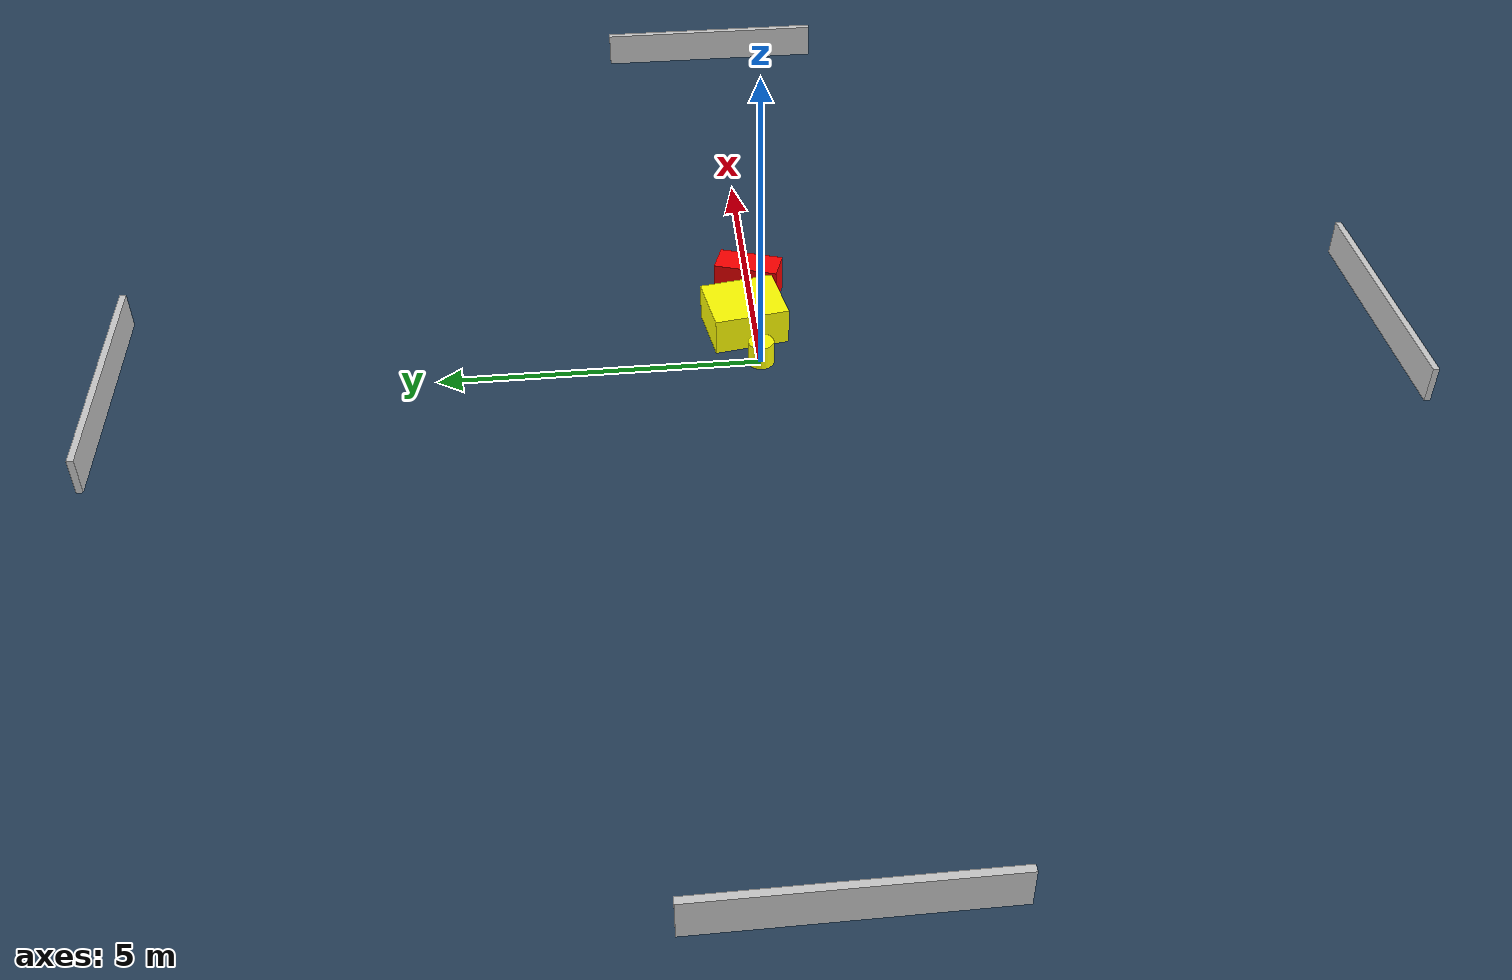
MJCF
<?xml version="1.0" ?>
<mujoco model="generated_environment">
  <option timestep="0.01" integrator="RK4" cone="elliptic"/>
  <default>
    <geom density="1"/>
  </default>
  <asset>
    <texture builtin="gradient" height="3072" name="skybox" rgb1="0.3 0.5 0.7" rgb2="0 0 0" type="skybox" width="512"/>
    <texture builtin="checker" height="300" name="groundplane" rgb1="0.2 0.3 0.4" rgb2="0.1 0.2 0.3" type="2d" width="300"/>
    <material name="groundplane" reflectance="0.2" texrepeat="5 5" texture="groundplane"/>
  </asset>
  <worldbody>
    <light dir="0 0 -1" directional="true" pos="0 0 1.5"/>
    <geom condim="3" friction="0.5 0.005 0.001" material="groundplane" name="floor" pos="0 0 0" size="0 0 0.05" type="plane"/>
    <body name="walls">
      <geom name="wall_1" condim="4" pos="-10.0 0.0 0.3" rgba="0.800000011920929 0.800000011920929 0.800000011920929 1.0" size="0.05 2.0 0.3" type="box"/>
      <geom name="wall_2" condim="4" pos="10.0 0.0 0.3" rgba="0.800000011920929 0.800000011920929 0.800000011920929 1.0" size="0.05 2.0 0.3" type="box"/>
      <geom name="wall_3" condim="4" pos="0.0 -10.0 0.3" rgba="0.800000011920929 0.800000011920929 0.800000011920929 1.0" size="2.0 0.05 0.3" type="box"/>
      <geom name="wall_4" condim="4" pos="0.0 10.0 0.3" rgba="0.800000011920929 0.800000011920929 0.800000011920929 1.0" size="2.0 0.05 0.3" type="box"/>
    </body>
    <body name="robot">
      <joint name="joint_x" type="slide" pos="0 0 0" axis="1 0 0"/>
      <joint name="joint_y" type="slide" pos="0 0 0" axis="0 1 0"/>
      <geom name="robot" type="cylinder" pos="0.0 0.0 0.2" size="0.2 0.2 0.0" mass="5.0" friction="1.0 0.005 0.0001" condim="4" rgba="1.0 1.0 0.0 1.0"/>
    </body>
    <body name="obstacle_1_movable">
      <geom name="obstacle_1_movable" condim="4" pos="0.8802121988843049 0.17870379525240088 0.3" euler="0 0 279.33013927595" friction="0.0 0.005 0.001" rgba="1.0 1.0 0.0 1.0" size="0.5938573685720205 0.5073341943667453 0.3" type="box" mass="0.1"/>
      <joint type="free"/>
    </body>
    <body name="obstacle_2_static">
      <geom name="obstacle_2_static" condim="4" pos="1.8880017680789694 0.012462558887039581 0.3" euler="0 0 341.1805418033906" friction="0.0 0.005 0.001" rgba="1.0 0.0 0.0 1.0" size="0.23765443712476536 0.5168970945548506 0.3" type="box"/>
    </body>
  </worldbody>
  <actuator>
    <motor name="actuator_x" joint="joint_x" gear="1" ctrlrange="-1 1"/>
    <motor name="actuator_y" joint="joint_y" gear="1" ctrlrange="-1 1"/>
  </actuator>
</mujoco>
